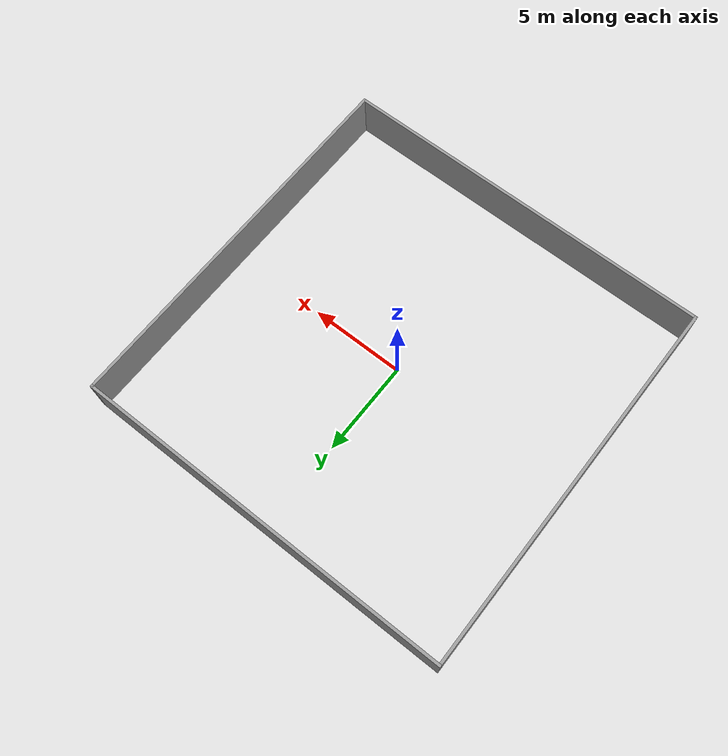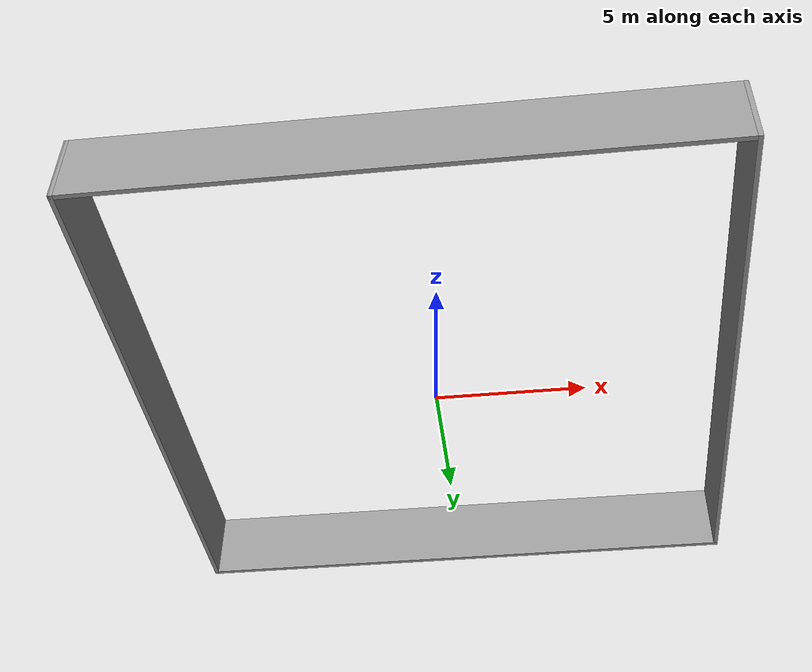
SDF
<?xml version='1.0'?>
<sdf version='1.7'>
  <model name='building'>
    <pose>-0.034068 0.006013 0 0 -0 0</pose>
    <link name='Wall_0'>
      <collision name='Wall_0_Collision'>
        <geometry>
          <box>
            <size>20 0.15 2.5</size>
          </box>
        </geometry>
        <pose>0 0 1.25 0 -0 0</pose>
      </collision>
      <visual name='Wall_0_Visual'>
        <pose>0 0 1.25 0 -0 0</pose>
        <geometry>
          <box>
            <size>20 0.15 2.5</size>
          </box>
        </geometry>
        <material>
          <script>
            <uri>file://media/materials/scripts/gazebo.material</uri>
            <name>Gazebo/Grey</name>
          </script>
          <ambient>1 1 1 1</ambient>
        </material>
        <meta>
          <layer>0</layer>
        </meta>
      </visual>
      <pose>0 -9.925 0 0 -0 0</pose>
    </link>
    <link name='Wall_2'>
      <collision name='Wall_2_Collision'>
        <geometry>
          <box>
            <size>20 0.15 2.5</size>
          </box>
        </geometry>
        <pose>0 0 1.25 0 -0 0</pose>
      </collision>
      <visual name='Wall_2_Visual'>
        <pose>0 0 1.25 0 -0 0</pose>
        <geometry>
          <box>
            <size>20 0.15 2.5</size>
          </box>
        </geometry>
        <material>
          <script>
            <uri>file://media/materials/scripts/gazebo.material</uri>
            <name>Gazebo/Grey</name>
          </script>
          <ambient>1 1 1 1</ambient>
        </material>
        <meta>
          <layer>0</layer>
        </meta>
      </visual>
      <pose>9.925 -0 0 0 -0 1.5708</pose>
    </link>
    <link name='Wall_4'>
      <collision name='Wall_4_Collision'>
        <geometry>
          <box>
            <size>20 0.15 2.5</size>
          </box>
        </geometry>
        <pose>0 0 1.25 0 -0 0</pose>
      </collision>
      <visual name='Wall_4_Visual'>
        <pose>0 0 1.25 0 -0 0</pose>
        <geometry>
          <box>
            <size>20 0.15 2.5</size>
          </box>
        </geometry>
        <material>
          <script>
            <uri>file://media/materials/scripts/gazebo.material</uri>
            <name>Gazebo/Grey</name>
          </script>
          <ambient>1 1 1 1</ambient>
        </material>
        <meta>
          <layer>0</layer>
        </meta>
      </visual>
      <pose>0 9.925 0 0 -0 3.14159</pose>
    </link>
    <link name='Wall_6'>
      <collision name='Wall_6_Collision'>
        <geometry>
          <box>
            <size>20 0.15 2.5</size>
          </box>
        </geometry>
        <pose>0 0 1.25 0 -0 0</pose>
      </collision>
      <visual name='Wall_6_Visual'>
        <pose>0 0 1.25 0 -0 0</pose>
        <geometry>
          <box>
            <size>20 0.15 2.5</size>
          </box>
        </geometry>
        <material>
          <script>
            <uri>file://media/materials/scripts/gazebo.material</uri>
            <name>Gazebo/Grey</name>
          </script>
          <ambient>1 1 1 1</ambient>
        </material>
        <meta>
          <layer>0</layer>
        </meta>
      </visual>
      <pose>-9.925 -0 0 0 -0 -1.5708</pose>
    </link>
    <static>1</static>
  </model>
</sdf>
